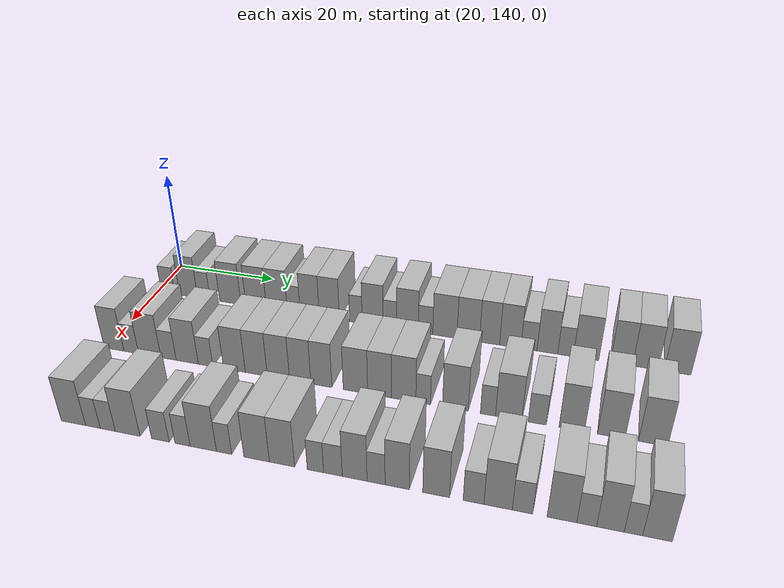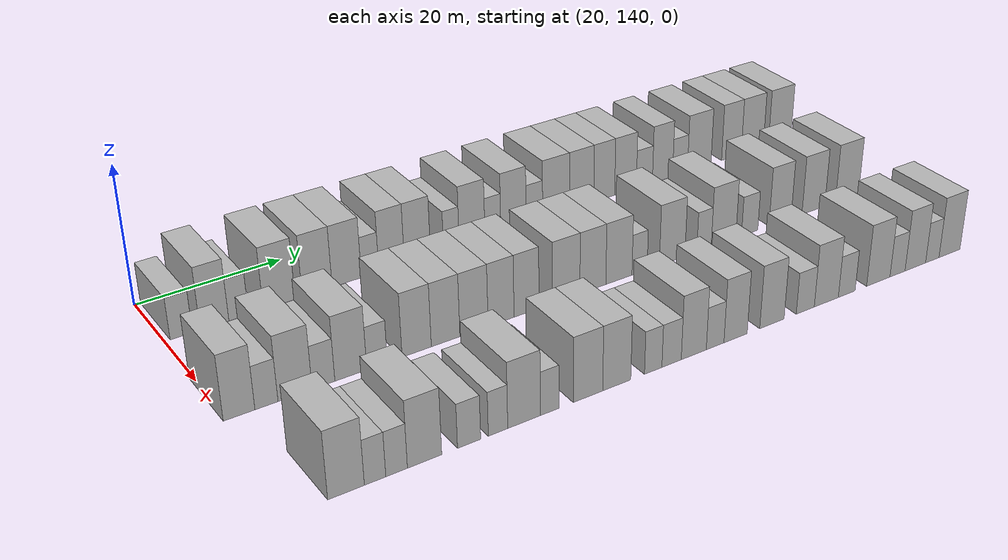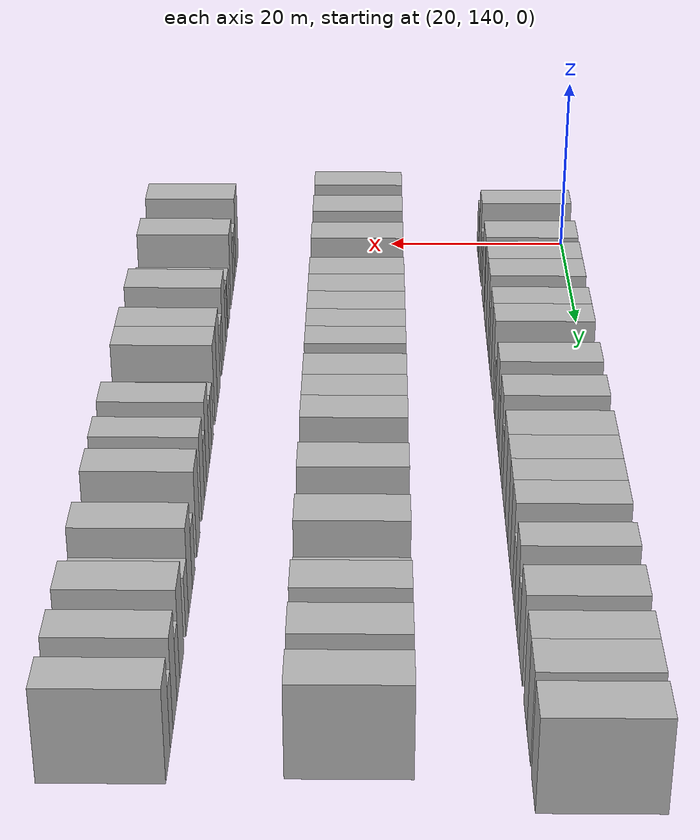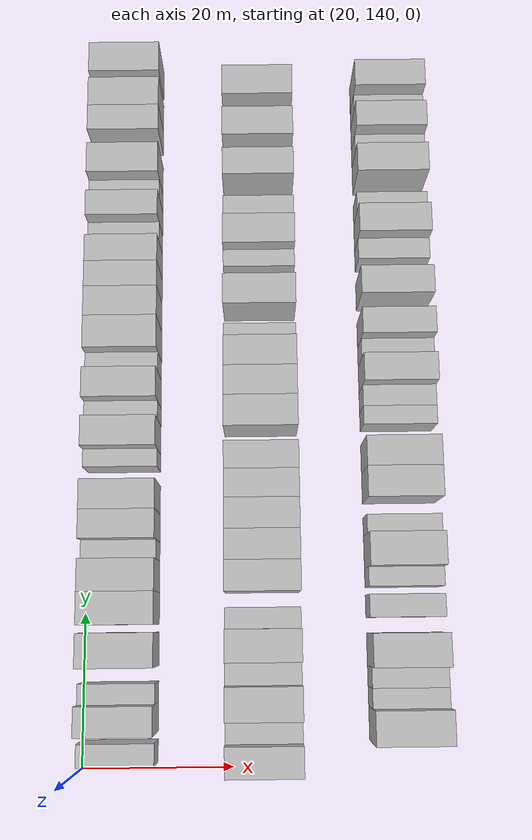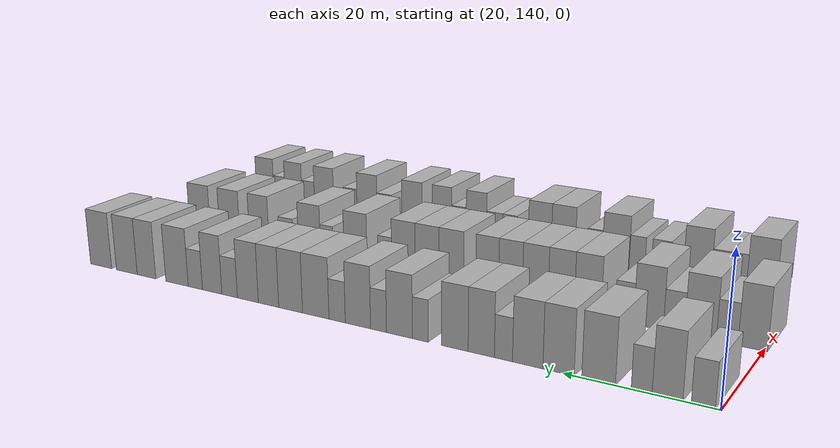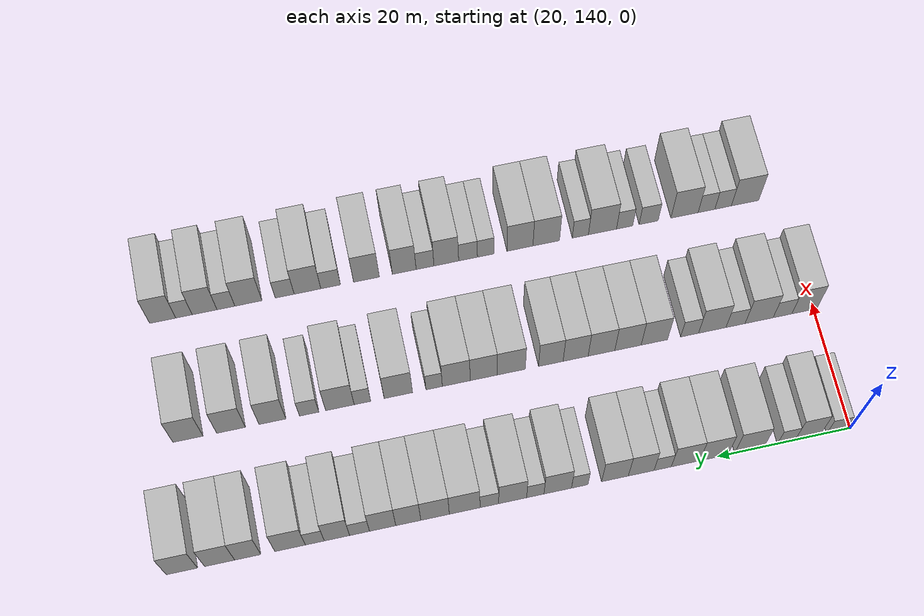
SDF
<sdf version="1.6">
 <world name="default">
  <model name="building_92">
   <static>1</static>
   <pose>25.0000 142.1798 0 0.000000 0.000000 0.000000</pose>
   <link name="link">
    <pose>0 0 3.00 0 0 0</pose>
    <collision name="collision"><geometry><box><size>10.0000 2.8975 6.0000</size></box></geometry></collision>
    <visual name="visual">
     <cast_shadows>0</cast_shadows>
     <geometry><box><size>10.0000 2.8975 6.0000</size></box></geometry>
     <material>
      <script>
       <uri>model://HANNAS_wall/materials/scripts</uri>
       <uri>model://HANNAS_wall/materials/textures</uri>
       <name>vrc/HANNAS_wall</name>
      </script>
     </material>
    </visual>
   </link>
  </model>
  <model name="building_93">
   <static>1</static>
   <pose>25.0000 146.5259 0 0.000000 0.000000 0.000000</pose>
   <link name="link">
    <pose>0 0 4.50 0 0 0</pose>
    <collision name="collision"><geometry><box><size>10.0000 3.7949 9.0000</size></box></geometry></collision>
    <visual name="visual">
     <cast_shadows>0</cast_shadows>
     <geometry><box><size>10.0000 3.7949 9.0000</size></box></geometry>
     <material>
      <script>
       <uri>model://HANNAS_wall/materials/scripts</uri>
       <uri>model://HANNAS_wall/materials/textures</uri>
       <name>vrc/HANNAS_wall</name>
      </script>
     </material>
    </visual>
   </link>
  </model>
  <model name="building_94">
   <static>1</static>
   <pose>25.0000 149.7406 0 0.000000 0.000000 0.000000</pose>
   <link name="link">
    <pose>0 0 3.00 0 0 0</pose>
    <collision name="collision"><geometry><box><size>10.0000 2.6344 6.0000</size></box></geometry></collision>
    <visual name="visual">
     <cast_shadows>0</cast_shadows>
     <geometry><box><size>10.0000 2.6344 6.0000</size></box></geometry>
     <material>
      <script>
       <uri>model://HANNAS_wall/materials/scripts</uri>
       <uri>model://HANNAS_wall/materials/textures</uri>
       <name>vrc/HANNAS_wall</name>
      </script>
     </material>
    </visual>
   </link>
  </model>
  <model name="building_95">
   <static>1</static>
   <pose>25.0000 155.2623 0 0.000000 0.000000 0.000000</pose>
   <link name="link">
    <pose>0 0 4.50 0 0 0</pose>
    <collision name="collision"><geometry><box><size>10.0000 4.4089 9.0000</size></box></geometry></collision>
    <visual name="visual">
     <cast_shadows>0</cast_shadows>
     <geometry><box><size>10.0000 4.4089 9.0000</size></box></geometry>
     <material>
      <script>
       <uri>model://HANNAS_wall/materials/scripts</uri>
       <uri>model://HANNAS_wall/materials/textures</uri>
       <name>vrc/HANNAS_wall</name>
      </script>
     </material>
    </visual>
   </link>
  </model>
  <model name="building_96">
   <static>1</static>
   <pose>25.0000 160.5820 0 0.000000 0.000000 0.000000</pose>
   <link name="link">
    <pose>0 0 4.50 0 0 0</pose>
    <collision name="collision"><geometry><box><size>10.0000 4.2304 9.0000</size></box></geometry></collision>
    <visual name="visual">
     <cast_shadows>0</cast_shadows>
     <geometry><box><size>10.0000 4.2304 9.0000</size></box></geometry>
     <material>
      <script>
       <uri>model://HANNAS_wall/materials/scripts</uri>
       <uri>model://HANNAS_wall/materials/textures</uri>
       <name>vrc/HANNAS_wall</name>
      </script>
     </material>
    </visual>
   </link>
  </model>
  <model name="building_97">
   <static>1</static>
   <pose>25.0000 164.8067 0 0.000000 0.000000 0.000000</pose>
   <link name="link">
    <pose>0 0 4.50 0 0 0</pose>
    <collision name="collision"><geometry><box><size>10.0000 4.2190 9.0000</size></box></geometry></collision>
    <visual name="visual">
     <cast_shadows>0</cast_shadows>
     <geometry><box><size>10.0000 4.2190 9.0000</size></box></geometry>
     <material>
      <script>
       <uri>model://HANNAS_wall/materials/scripts</uri>
       <uri>model://HANNAS_wall/materials/textures</uri>
       <name>vrc/HANNAS_wall</name>
      </script>
     </material>
    </visual>
   </link>
  </model>
  <model name="building_98">
   <static>1</static>
   <pose>25.0000 168.1983 0 0.000000 0.000000 0.000000</pose>
   <link name="link">
    <pose>0 0 3.00 0 0 0</pose>
    <collision name="collision"><geometry><box><size>10.0000 2.5643 6.0000</size></box></geometry></collision>
    <visual name="visual">
     <cast_shadows>0</cast_shadows>
     <geometry><box><size>10.0000 2.5643 6.0000</size></box></geometry>
     <material>
      <script>
       <uri>model://HANNAS_wall/materials/scripts</uri>
       <uri>model://HANNAS_wall/materials/textures</uri>
       <name>vrc/HANNAS_wall</name>
      </script>
     </material>
    </visual>
   </link>
  </model>
  <model name="building_99">
   <static>1</static>
   <pose>25.0000 171.3811 0 0.000000 0.000000 0.000000</pose>
   <link name="link">
    <pose>0 0 4.50 0 0 0</pose>
    <collision name="collision"><geometry><box><size>10.0000 3.8014 9.0000</size></box></geometry></collision>
    <visual name="visual">
     <cast_shadows>0</cast_shadows>
     <geometry><box><size>10.0000 3.8014 9.0000</size></box></geometry>
     <material>
      <script>
       <uri>model://HANNAS_wall/materials/scripts</uri>
       <uri>model://HANNAS_wall/materials/textures</uri>
       <name>vrc/HANNAS_wall</name>
      </script>
     </material>
    </visual>
   </link>
  </model>
  <model name="building_100">
   <static>1</static>
   <pose>25.0000 175.2586 0 0.000000 0.000000 0.000000</pose>
   <link name="link">
    <pose>0 0 4.50 0 0 0</pose>
    <collision name="collision"><geometry><box><size>10.0000 3.9536 9.0000</size></box></geometry></collision>
    <visual name="visual">
     <cast_shadows>0</cast_shadows>
     <geometry><box><size>10.0000 3.9536 9.0000</size></box></geometry>
     <material>
      <script>
       <uri>model://HANNAS_wall/materials/scripts</uri>
       <uri>model://HANNAS_wall/materials/textures</uri>
       <name>vrc/HANNAS_wall</name>
      </script>
     </material>
    </visual>
   </link>
  </model>
  <model name="building_101">
   <static>1</static>
   <pose>25.0000 180.4535 0 0.000000 0.000000 0.000000</pose>
   <link name="link">
    <pose>0 0 3.00 0 0 0</pose>
    <collision name="collision"><geometry><box><size>10.0000 2.4362 6.0000</size></box></geometry></collision>
    <visual name="visual">
     <cast_shadows>0</cast_shadows>
     <geometry><box><size>10.0000 2.4362 6.0000</size></box></geometry>
     <material>
      <script>
       <uri>model://HANNAS_wall/materials/scripts</uri>
       <uri>model://HANNAS_wall/materials/textures</uri>
       <name>vrc/HANNAS_wall</name>
      </script>
     </material>
    </visual>
   </link>
  </model>
  <model name="building_102">
   <static>1</static>
   <pose>25.0000 183.6947 0 0.000000 0.000000 0.000000</pose>
   <link name="link">
    <pose>0 0 4.50 0 0 0</pose>
    <collision name="collision"><geometry><box><size>10.0000 4.0461 9.0000</size></box></geometry></collision>
    <visual name="visual">
     <cast_shadows>0</cast_shadows>
     <geometry><box><size>10.0000 4.0461 9.0000</size></box></geometry>
     <material>
      <script>
       <uri>model://HANNAS_wall/materials/scripts</uri>
       <uri>model://HANNAS_wall/materials/textures</uri>
       <name>vrc/HANNAS_wall</name>
      </script>
     </material>
    </visual>
   </link>
  </model>
  <model name="building_103">
   <static>1</static>
   <pose>25.0000 186.9864 0 0.000000 0.000000 0.000000</pose>
   <link name="link">
    <pose>0 0 3.00 0 0 0</pose>
    <collision name="collision"><geometry><box><size>10.0000 2.5374 6.0000</size></box></geometry></collision>
    <visual name="visual">
     <cast_shadows>0</cast_shadows>
     <geometry><box><size>10.0000 2.5374 6.0000</size></box></geometry>
     <material>
      <script>
       <uri>model://HANNAS_wall/materials/scripts</uri>
       <uri>model://HANNAS_wall/materials/textures</uri>
       <name>vrc/HANNAS_wall</name>
      </script>
     </material>
    </visual>
   </link>
  </model>
  <model name="building_104">
   <static>1</static>
   <pose>25.0000 190.3065 0 0.000000 0.000000 0.000000</pose>
   <link name="link">
    <pose>0 0 4.50 0 0 0</pose>
    <collision name="collision"><geometry><box><size>10.0000 4.1027 9.0000</size></box></geometry></collision>
    <visual name="visual">
     <cast_shadows>0</cast_shadows>
     <geometry><box><size>10.0000 4.1027 9.0000</size></box></geometry>
     <material>
      <script>
       <uri>model://HANNAS_wall/materials/scripts</uri>
       <uri>model://HANNAS_wall/materials/textures</uri>
       <name>vrc/HANNAS_wall</name>
      </script>
     </material>
    </visual>
   </link>
  </model>
  <model name="building_105">
   <static>1</static>
   <pose>25.0000 193.7149 0 0.000000 0.000000 0.000000</pose>
   <link name="link">
    <pose>0 0 3.00 0 0 0</pose>
    <collision name="collision"><geometry><box><size>10.0000 2.7142 6.0000</size></box></geometry></collision>
    <visual name="visual">
     <cast_shadows>0</cast_shadows>
     <geometry><box><size>10.0000 2.7142 6.0000</size></box></geometry>
     <material>
      <script>
       <uri>model://HANNAS_wall/materials/scripts</uri>
       <uri>model://HANNAS_wall/materials/textures</uri>
       <name>vrc/HANNAS_wall</name>
      </script>
     </material>
    </visual>
   </link>
  </model>
  <model name="building_106">
   <static>1</static>
   <pose>25.0000 197.3073 0 0.000000 0.000000 0.000000</pose>
   <link name="link">
    <pose>0 0 4.50 0 0 0</pose>
    <collision name="collision"><geometry><box><size>10.0000 4.4706 9.0000</size></box></geometry></collision>
    <visual name="visual">
     <cast_shadows>0</cast_shadows>
     <geometry><box><size>10.0000 4.4706 9.0000</size></box></geometry>
     <material>
      <script>
       <uri>model://HANNAS_wall/materials/scripts</uri>
       <uri>model://HANNAS_wall/materials/textures</uri>
       <name>vrc/HANNAS_wall</name>
      </script>
     </material>
    </visual>
   </link>
  </model>
  <model name="building_107">
   <static>1</static>
   <pose>25.0000 201.6124 0 0.000000 0.000000 0.000000</pose>
   <link name="link">
    <pose>0 0 4.50 0 0 0</pose>
    <collision name="collision"><geometry><box><size>10.0000 4.1395 9.0000</size></box></geometry></collision>
    <visual name="visual">
     <cast_shadows>0</cast_shadows>
     <geometry><box><size>10.0000 4.1395 9.0000</size></box></geometry>
     <material>
      <script>
       <uri>model://HANNAS_wall/materials/scripts</uri>
       <uri>model://HANNAS_wall/materials/textures</uri>
       <name>vrc/HANNAS_wall</name>
      </script>
     </material>
    </visual>
   </link>
  </model>
  <model name="building_108">
   <static>1</static>
   <pose>25.0000 205.4943 0 0.000000 0.000000 0.000000</pose>
   <link name="link">
    <pose>0 0 4.50 0 0 0</pose>
    <collision name="collision"><geometry><box><size>10.0000 3.6243 9.0000</size></box></geometry></collision>
    <visual name="visual">
     <cast_shadows>0</cast_shadows>
     <geometry><box><size>10.0000 3.6243 9.0000</size></box></geometry>
     <material>
      <script>
       <uri>model://HANNAS_wall/materials/scripts</uri>
       <uri>model://HANNAS_wall/materials/textures</uri>
       <name>vrc/HANNAS_wall</name>
      </script>
     </material>
    </visual>
   </link>
  </model>
  <model name="building_109">
   <static>1</static>
   <pose>25.0000 209.2106 0 0.000000 0.000000 0.000000</pose>
   <link name="link">
    <pose>0 0 4.50 0 0 0</pose>
    <collision name="collision"><geometry><box><size>10.0000 3.8083 9.0000</size></box></geometry></collision>
    <visual name="visual">
     <cast_shadows>0</cast_shadows>
     <geometry><box><size>10.0000 3.8083 9.0000</size></box></geometry>
     <material>
      <script>
       <uri>model://HANNAS_wall/materials/scripts</uri>
       <uri>model://HANNAS_wall/materials/textures</uri>
       <name>vrc/HANNAS_wall</name>
      </script>
     </material>
    </visual>
   </link>
  </model>
  <model name="building_110">
   <static>1</static>
   <pose>25.0000 212.5458 0 0.000000 0.000000 0.000000</pose>
   <link name="link">
    <pose>0 0 3.00 0 0 0</pose>
    <collision name="collision"><geometry><box><size>10.0000 2.8622 6.0000</size></box></geometry></collision>
    <visual name="visual">
     <cast_shadows>0</cast_shadows>
     <geometry><box><size>10.0000 2.8622 6.0000</size></box></geometry>
     <material>
      <script>
       <uri>model://HANNAS_wall/materials/scripts</uri>
       <uri>model://HANNAS_wall/materials/textures</uri>
       <name>vrc/HANNAS_wall</name>
      </script>
     </material>
    </visual>
   </link>
  </model>
  <model name="building_111">
   <static>1</static>
   <pose>25.0000 215.8029 0 0.000000 0.000000 0.000000</pose>
   <link name="link">
    <pose>0 0 4.50 0 0 0</pose>
    <collision name="collision"><geometry><box><size>10.0000 3.6519 9.0000</size></box></geometry></collision>
    <visual name="visual">
     <cast_shadows>0</cast_shadows>
     <geometry><box><size>10.0000 3.6519 9.0000</size></box></geometry>
     <material>
      <script>
       <uri>model://HANNAS_wall/materials/scripts</uri>
       <uri>model://HANNAS_wall/materials/textures</uri>
       <name>vrc/HANNAS_wall</name>
      </script>
     </material>
    </visual>
   </link>
  </model>
  <model name="building_112">
   <static>1</static>
   <pose>25.0000 218.9921 0 0.000000 0.000000 0.000000</pose>
   <link name="link">
    <pose>0 0 3.00 0 0 0</pose>
    <collision name="collision"><geometry><box><size>10.0000 2.7266 6.0000</size></box></geometry></collision>
    <visual name="visual">
     <cast_shadows>0</cast_shadows>
     <geometry><box><size>10.0000 2.7266 6.0000</size></box></geometry>
     <material>
      <script>
       <uri>model://HANNAS_wall/materials/scripts</uri>
       <uri>model://HANNAS_wall/materials/textures</uri>
       <name>vrc/HANNAS_wall</name>
      </script>
     </material>
    </visual>
   </link>
  </model>
  <model name="building_113">
   <static>1</static>
   <pose>25.0000 222.5459 0 0.000000 0.000000 0.000000</pose>
   <link name="link">
    <pose>0 0 4.50 0 0 0</pose>
    <collision name="collision"><geometry><box><size>10.0000 4.3810 9.0000</size></box></geometry></collision>
    <visual name="visual">
     <cast_shadows>0</cast_shadows>
     <geometry><box><size>10.0000 4.3810 9.0000</size></box></geometry>
     <material>
      <script>
       <uri>model://HANNAS_wall/materials/scripts</uri>
       <uri>model://HANNAS_wall/materials/textures</uri>
       <name>vrc/HANNAS_wall</name>
      </script>
     </material>
    </visual>
   </link>
  </model>
  <model name="building_114">
   <static>1</static>
   <pose>25.0000 228.6052 0 0.000000 0.000000 0.000000</pose>
   <link name="link">
    <pose>0 0 4.50 0 0 0</pose>
    <collision name="collision"><geometry><box><size>10.0000 3.7375 9.0000</size></box></geometry></collision>
    <visual name="visual">
     <cast_shadows>0</cast_shadows>
     <geometry><box><size>10.0000 3.7375 9.0000</size></box></geometry>
     <material>
      <script>
       <uri>model://HANNAS_wall/materials/scripts</uri>
       <uri>model://HANNAS_wall/materials/textures</uri>
       <name>vrc/HANNAS_wall</name>
      </script>
     </material>
    </visual>
   </link>
  </model>
  <model name="building_115">
   <static>1</static>
   <pose>25.0000 232.6132 0 0.000000 0.000000 0.000000</pose>
   <link name="link">
    <pose>0 0 4.50 0 0 0</pose>
    <collision name="collision"><geometry><box><size>10.0000 4.2785 9.0000</size></box></geometry></collision>
    <visual name="visual">
     <cast_shadows>0</cast_shadows>
     <geometry><box><size>10.0000 4.2785 9.0000</size></box></geometry>
     <material>
      <script>
       <uri>model://HANNAS_wall/materials/scripts</uri>
       <uri>model://HANNAS_wall/materials/textures</uri>
       <name>vrc/HANNAS_wall</name>
      </script>
     </material>
    </visual>
   </link>
  </model>
  <model name="building_116">
   <static>1</static>
   <pose>25.0000 237.9758 0 0.000000 0.000000 0.000000</pose>
   <link name="link">
    <pose>0 0 4.50 0 0 0</pose>
    <collision name="collision"><geometry><box><size>10.0000 4.4467 9.0000</size></box></geometry></collision>
    <visual name="visual">
     <cast_shadows>0</cast_shadows>
     <geometry><box><size>10.0000 4.4467 9.0000</size></box></geometry>
     <material>
      <script>
       <uri>model://HANNAS_wall/materials/scripts</uri>
       <uri>model://HANNAS_wall/materials/textures</uri>
       <name>vrc/HANNAS_wall</name>
      </script>
     </material>
    </visual>
   </link>
  </model>
  <model name="building_215">
   <static>1</static>
   <pose>44.0000 141.4642 0 0.000000 0.000000 0.000000</pose>
   <link name="link">
    <pose>0 0 4.50 0 0 0</pose>
    <collision name="collision"><geometry><box><size>10.0000 3.8860 9.0000</size></box></geometry></collision>
    <visual name="visual">
     <cast_shadows>0</cast_shadows>
     <geometry><box><size>10.0000 3.8860 9.0000</size></box></geometry>
     <material>
      <script>
       <uri>model://HANNAS_wall/materials/scripts</uri>
       <uri>model://HANNAS_wall/materials/textures</uri>
       <name>vrc/HANNAS_wall</name>
      </script>
     </material>
    </visual>
   </link>
  </model>
  <model name="building_216">
   <static>1</static>
   <pose>44.0000 144.8445 0 0.000000 0.000000 0.000000</pose>
   <link name="link">
    <pose>0 0 3.00 0 0 0</pose>
    <collision name="collision"><geometry><box><size>10.0000 2.8747 6.0000</size></box></geometry></collision>
    <visual name="visual">
     <cast_shadows>0</cast_shadows>
     <geometry><box><size>10.0000 2.8747 6.0000</size></box></geometry>
     <material>
      <script>
       <uri>model://HANNAS_wall/materials/scripts</uri>
       <uri>model://HANNAS_wall/materials/textures</uri>
       <name>vrc/HANNAS_wall</name>
      </script>
     </material>
    </visual>
   </link>
  </model>
  <model name="building_217">
   <static>1</static>
   <pose>44.0000 148.4498 0 0.000000 0.000000 0.000000</pose>
   <link name="link">
    <pose>0 0 4.50 0 0 0</pose>
    <collision name="collision"><geometry><box><size>10.0000 4.3358 9.0000</size></box></geometry></collision>
    <visual name="visual">
     <cast_shadows>0</cast_shadows>
     <geometry><box><size>10.0000 4.3358 9.0000</size></box></geometry>
     <material>
      <script>
       <uri>model://HANNAS_wall/materials/scripts</uri>
       <uri>model://HANNAS_wall/materials/textures</uri>
       <name>vrc/HANNAS_wall</name>
      </script>
     </material>
    </visual>
   </link>
  </model>
  <model name="building_218">
   <static>1</static>
   <pose>44.0000 152.0885 0 0.000000 0.000000 0.000000</pose>
   <link name="link">
    <pose>0 0 3.00 0 0 0</pose>
    <collision name="collision"><geometry><box><size>10.0000 2.9416 6.0000</size></box></geometry></collision>
    <visual name="visual">
     <cast_shadows>0</cast_shadows>
     <geometry><box><size>10.0000 2.9416 6.0000</size></box></geometry>
     <material>
      <script>
       <uri>model://HANNAS_wall/materials/scripts</uri>
       <uri>model://HANNAS_wall/materials/textures</uri>
       <name>vrc/HANNAS_wall</name>
      </script>
     </material>
    </visual>
   </link>
  </model>
  <model name="building_219">
   <static>1</static>
   <pose>44.0000 155.6635 0 0.000000 0.000000 0.000000</pose>
   <link name="link">
    <pose>0 0 4.50 0 0 0</pose>
    <collision name="collision"><geometry><box><size>10.0000 4.2083 9.0000</size></box></geometry></collision>
    <visual name="visual">
     <cast_shadows>0</cast_shadows>
     <geometry><box><size>10.0000 4.2083 9.0000</size></box></geometry>
     <material>
      <script>
       <uri>model://HANNAS_wall/materials/scripts</uri>
       <uri>model://HANNAS_wall/materials/textures</uri>
       <name>vrc/HANNAS_wall</name>
      </script>
     </material>
    </visual>
   </link>
  </model>
  <model name="building_220">
   <static>1</static>
   <pose>44.0000 159.1427 0 0.000000 0.000000 0.000000</pose>
   <link name="link">
    <pose>0 0 3.00 0 0 0</pose>
    <collision name="collision"><geometry><box><size>10.0000 2.7502 6.0000</size></box></geometry></collision>
    <visual name="visual">
     <cast_shadows>0</cast_shadows>
     <geometry><box><size>10.0000 2.7502 6.0000</size></box></geometry>
     <material>
      <script>
       <uri>model://HANNAS_wall/materials/scripts</uri>
       <uri>model://HANNAS_wall/materials/textures</uri>
       <name>vrc/HANNAS_wall</name>
      </script>
     </material>
    </visual>
   </link>
  </model>
  <model name="building_221">
   <static>1</static>
   <pose>44.0000 164.5348 0 0.000000 0.000000 0.000000</pose>
   <link name="link">
    <pose>0 0 4.50 0 0 0</pose>
    <collision name="collision"><geometry><box><size>10.0000 4.0340 9.0000</size></box></geometry></collision>
    <visual name="visual">
     <cast_shadows>0</cast_shadows>
     <geometry><box><size>10.0000 4.0340 9.0000</size></box></geometry>
     <material>
      <script>
       <uri>model://HANNAS_wall/materials/scripts</uri>
       <uri>model://HANNAS_wall/materials/textures</uri>
       <name>vrc/HANNAS_wall</name>
      </script>
     </material>
    </visual>
   </link>
  </model>
  <model name="building_222">
   <static>1</static>
   <pose>44.0000 168.5624 0 0.000000 0.000000 0.000000</pose>
   <link name="link">
    <pose>0 0 4.50 0 0 0</pose>
    <collision name="collision"><geometry><box><size>10.0000 4.0212 9.0000</size></box></geometry></collision>
    <visual name="visual">
     <cast_shadows>0</cast_shadows>
     <geometry><box><size>10.0000 4.0212 9.0000</size></box></geometry>
     <material>
      <script>
       <uri>model://HANNAS_wall/materials/scripts</uri>
       <uri>model://HANNAS_wall/materials/textures</uri>
       <name>vrc/HANNAS_wall</name>
      </script>
     </material>
    </visual>
   </link>
  </model>
  <model name="building_223">
   <static>1</static>
   <pose>44.0000 172.5974 0 0.000000 0.000000 0.000000</pose>
   <link name="link">
    <pose>0 0 4.50 0 0 0</pose>
    <collision name="collision"><geometry><box><size>10.0000 4.0487 9.0000</size></box></geometry></collision>
    <visual name="visual">
     <cast_shadows>0</cast_shadows>
     <geometry><box><size>10.0000 4.0487 9.0000</size></box></geometry>
     <material>
      <script>
       <uri>model://HANNAS_wall/materials/scripts</uri>
       <uri>model://HANNAS_wall/materials/textures</uri>
       <name>vrc/HANNAS_wall</name>
      </script>
     </material>
    </visual>
   </link>
  </model>
  <model name="building_224">
   <static>1</static>
   <pose>44.0000 176.5198 0 0.000000 0.000000 0.000000</pose>
   <link name="link">
    <pose>0 0 4.50 0 0 0</pose>
    <collision name="collision"><geometry><box><size>10.0000 3.7961 9.0000</size></box></geometry></collision>
    <visual name="visual">
     <cast_shadows>0</cast_shadows>
     <geometry><box><size>10.0000 3.7961 9.0000</size></box></geometry>
     <material>
      <script>
       <uri>model://HANNAS_wall/materials/scripts</uri>
       <uri>model://HANNAS_wall/materials/textures</uri>
       <name>vrc/HANNAS_wall</name>
      </script>
     </material>
    </visual>
   </link>
  </model>
  <model name="building_225">
   <static>1</static>
   <pose>44.0000 180.2763 0 0.000000 0.000000 0.000000</pose>
   <link name="link">
    <pose>0 0 4.50 0 0 0</pose>
    <collision name="collision"><geometry><box><size>10.0000 3.7170 9.0000</size></box></geometry></collision>
    <visual name="visual">
     <cast_shadows>0</cast_shadows>
     <geometry><box><size>10.0000 3.7170 9.0000</size></box></geometry>
     <material>
      <script>
       <uri>model://HANNAS_wall/materials/scripts</uri>
       <uri>model://HANNAS_wall/materials/textures</uri>
       <name>vrc/HANNAS_wall</name>
      </script>
     </material>
    </visual>
   </link>
  </model>
  <model name="building_226">
   <static>1</static>
   <pose>44.0000 186.2483 0 0.000000 0.000000 0.000000</pose>
   <link name="link">
    <pose>0 0 4.50 0 0 0</pose>
    <collision name="collision"><geometry><box><size>10.0000 4.2270 9.0000</size></box></geometry></collision>
    <visual name="visual">
     <cast_shadows>0</cast_shadows>
     <geometry><box><size>10.0000 4.2270 9.0000</size></box></geometry>
     <material>
      <script>
       <uri>model://HANNAS_wall/materials/scripts</uri>
       <uri>model://HANNAS_wall/materials/textures</uri>
       <name>vrc/HANNAS_wall</name>
      </script>
     </material>
    </visual>
   </link>
  </model>
  <model name="building_227">
   <static>1</static>
   <pose>44.0000 190.3904 0 0.000000 0.000000 0.000000</pose>
   <link name="link">
    <pose>0 0 4.50 0 0 0</pose>
    <collision name="collision"><geometry><box><size>10.0000 4.0571 9.0000</size></box></geometry></collision>
    <visual name="visual">
     <cast_shadows>0</cast_shadows>
     <geometry><box><size>10.0000 4.0571 9.0000</size></box></geometry>
     <material>
      <script>
       <uri>model://HANNAS_wall/materials/scripts</uri>
       <uri>model://HANNAS_wall/materials/textures</uri>
       <name>vrc/HANNAS_wall</name>
      </script>
     </material>
    </visual>
   </link>
  </model>
  <model name="building_228">
   <static>1</static>
   <pose>44.0000 194.5025 0 0.000000 0.000000 0.000000</pose>
   <link name="link">
    <pose>0 0 4.50 0 0 0</pose>
    <collision name="collision"><geometry><box><size>10.0000 4.1670 9.0000</size></box></geometry></collision>
    <visual name="visual">
     <cast_shadows>0</cast_shadows>
     <geometry><box><size>10.0000 4.1670 9.0000</size></box></geometry>
     <material>
      <script>
       <uri>model://HANNAS_wall/materials/scripts</uri>
       <uri>model://HANNAS_wall/materials/textures</uri>
       <name>vrc/HANNAS_wall</name>
      </script>
     </material>
    </visual>
   </link>
  </model>
  <model name="building_229">
   <static>1</static>
   <pose>44.0000 197.8110 0 0.000000 0.000000 0.000000</pose>
   <link name="link">
    <pose>0 0 3.00 0 0 0</pose>
    <collision name="collision"><geometry><box><size>10.0000 2.4500 6.0000</size></box></geometry></collision>
    <visual name="visual">
     <cast_shadows>0</cast_shadows>
     <geometry><box><size>10.0000 2.4500 6.0000</size></box></geometry>
     <material>
      <script>
       <uri>model://HANNAS_wall/materials/scripts</uri>
       <uri>model://HANNAS_wall/materials/textures</uri>
       <name>vrc/HANNAS_wall</name>
      </script>
     </material>
    </visual>
   </link>
  </model>
  <model name="building_230">
   <static>1</static>
   <pose>44.0000 203.1567 0 0.000000 0.000000 0.000000</pose>
   <link name="link">
    <pose>0 0 4.50 0 0 0</pose>
    <collision name="collision"><geometry><box><size>10.0000 4.2415 9.0000</size></box></geometry></collision>
    <visual name="visual">
     <cast_shadows>0</cast_shadows>
     <geometry><box><size>10.0000 4.2415 9.0000</size></box></geometry>
     <material>
      <script>
       <uri>model://HANNAS_wall/materials/scripts</uri>
       <uri>model://HANNAS_wall/materials/textures</uri>
       <name>vrc/HANNAS_wall</name>
      </script>
     </material>
    </visual>
   </link>
  </model>
  <model name="building_231">
   <static>1</static>
   <pose>44.0000 208.5021 0 0.000000 0.000000 0.000000</pose>
   <link name="link">
    <pose>0 0 3.00 0 0 0</pose>
    <collision name="collision"><geometry><box><size>10.0000 2.4494 6.0000</size></box></geometry></collision>
    <visual name="visual">
     <cast_shadows>0</cast_shadows>
     <geometry><box><size>10.0000 2.4494 6.0000</size></box></geometry>
     <material>
      <script>
       <uri>model://HANNAS_wall/materials/scripts</uri>
       <uri>model://HANNAS_wall/materials/textures</uri>
       <name>vrc/HANNAS_wall</name>
      </script>
     </material>
    </visual>
   </link>
  </model>
  <model name="building_232">
   <static>1</static>
   <pose>44.0000 211.8461 0 0.000000 0.000000 0.000000</pose>
   <link name="link">
    <pose>0 0 4.50 0 0 0</pose>
    <collision name="collision"><geometry><box><size>10.0000 4.2387 9.0000</size></box></geometry></collision>
    <visual name="visual">
     <cast_shadows>0</cast_shadows>
     <geometry><box><size>10.0000 4.2387 9.0000</size></box></geometry>
     <material>
      <script>
       <uri>model://HANNAS_wall/materials/scripts</uri>
       <uri>model://HANNAS_wall/materials/textures</uri>
       <name>vrc/HANNAS_wall</name>
      </script>
     </material>
    </visual>
   </link>
  </model>
  <model name="building_233">
   <static>1</static>
   <pose>44.0000 216.3993 0 0.000000 0.000000 0.000000</pose>
   <link name="link">
    <pose>0 0 3.00 0 0 0</pose>
    <collision name="collision"><geometry><box><size>10.0000 2.8677 6.0000</size></box></geometry></collision>
    <visual name="visual">
     <cast_shadows>0</cast_shadows>
     <geometry><box><size>10.0000 2.8677 6.0000</size></box></geometry>
     <material>
      <script>
       <uri>model://HANNAS_wall/materials/scripts</uri>
       <uri>model://HANNAS_wall/materials/textures</uri>
       <name>vrc/HANNAS_wall</name>
      </script>
     </material>
    </visual>
   </link>
  </model>
  <model name="building_234">
   <static>1</static>
   <pose>44.0000 221.8175 0 0.000000 0.000000 0.000000</pose>
   <link name="link">
    <pose>0 0 4.50 0 0 0</pose>
    <collision name="collision"><geometry><box><size>10.0000 3.9687 9.0000</size></box></geometry></collision>
    <visual name="visual">
     <cast_shadows>0</cast_shadows>
     <geometry><box><size>10.0000 3.9687 9.0000</size></box></geometry>
     <material>
      <script>
       <uri>model://HANNAS_wall/materials/scripts</uri>
       <uri>model://HANNAS_wall/materials/textures</uri>
       <name>vrc/HANNAS_wall</name>
      </script>
     </material>
    </visual>
   </link>
  </model>
  <model name="building_235">
   <static>1</static>
   <pose>44.0000 227.9108 0 0.000000 0.000000 0.000000</pose>
   <link name="link">
    <pose>0 0 4.50 0 0 0</pose>
    <collision name="collision"><geometry><box><size>10.0000 4.2178 9.0000</size></box></geometry></collision>
    <visual name="visual">
     <cast_shadows>0</cast_shadows>
     <geometry><box><size>10.0000 4.2178 9.0000</size></box></geometry>
     <material>
      <script>
       <uri>model://HANNAS_wall/materials/scripts</uri>
       <uri>model://HANNAS_wall/materials/textures</uri>
       <name>vrc/HANNAS_wall</name>
      </script>
     </material>
    </visual>
   </link>
  </model>
  <model name="building_236">
   <static>1</static>
   <pose>44.0000 234.2228 0 0.000000 0.000000 0.000000</pose>
   <link name="link">
    <pose>0 0 4.50 0 0 0</pose>
    <collision name="collision"><geometry><box><size>10.0000 4.4062 9.0000</size></box></geometry></collision>
    <visual name="visual">
     <cast_shadows>0</cast_shadows>
     <geometry><box><size>10.0000 4.4062 9.0000</size></box></geometry>
     <material>
      <script>
       <uri>model://HANNAS_wall/materials/scripts</uri>
       <uri>model://HANNAS_wall/materials/textures</uri>
       <name>vrc/HANNAS_wall</name>
      </script>
     </material>
    </visual>
   </link>
  </model>
  <model name="building_334">
   <static>1</static>
   <pose>63.0000 145.3531 0 0.000000 0.000000 0.000000</pose>
   <link name="link">
    <pose>0 0 4.50 0 0 0</pose>
    <collision name="collision"><geometry><box><size>10.0000 4.3512 9.0000</size></box></geometry></collision>
    <visual name="visual">
     <cast_shadows>0</cast_shadows>
     <geometry><box><size>10.0000 4.3512 9.0000</size></box></geometry>
     <material>
      <script>
       <uri>model://HANNAS_wall/materials/scripts</uri>
       <uri>model://HANNAS_wall/materials/textures</uri>
       <name>vrc/HANNAS_wall</name>
      </script>
     </material>
    </visual>
   </link>
  </model>
  <model name="building_335">
   <static>1</static>
   <pose>63.0000 148.8240 0 0.000000 0.000000 0.000000</pose>
   <link name="link">
    <pose>0 0 3.00 0 0 0</pose>
    <collision name="collision"><geometry><box><size>10.0000 2.5905 6.0000</size></box></geometry></collision>
    <visual name="visual">
     <cast_shadows>0</cast_shadows>
     <geometry><box><size>10.0000 2.5905 6.0000</size></box></geometry>
     <material>
      <script>
       <uri>model://HANNAS_wall/materials/scripts</uri>
       <uri>model://HANNAS_wall/materials/textures</uri>
       <name>vrc/HANNAS_wall</name>
      </script>
     </material>
    </visual>
   </link>
  </model>
  <model name="building_336">
   <static>1</static>
   <pose>63.0000 151.4440 0 0.000000 0.000000 0.000000</pose>
   <link name="link">
    <pose>0 0 3.00 0 0 0</pose>
    <collision name="collision"><geometry><box><size>10.0000 2.6495 6.0000</size></box></geometry></collision>
    <visual name="visual">
     <cast_shadows>0</cast_shadows>
     <geometry><box><size>10.0000 2.6495 6.0000</size></box></geometry>
     <material>
      <script>
       <uri>model://HANNAS_wall/materials/scripts</uri>
       <uri>model://HANNAS_wall/materials/textures</uri>
       <name>vrc/HANNAS_wall</name>
      </script>
     </material>
    </visual>
   </link>
  </model>
  <model name="building_337">
   <static>1</static>
   <pose>63.0000 154.9140 0 0.000000 0.000000 0.000000</pose>
   <link name="link">
    <pose>0 0 4.50 0 0 0</pose>
    <collision name="collision"><geometry><box><size>10.0000 4.2905 9.0000</size></box></geometry></collision>
    <visual name="visual">
     <cast_shadows>0</cast_shadows>
     <geometry><box><size>10.0000 4.2905 9.0000</size></box></geometry>
     <material>
      <script>
       <uri>model://HANNAS_wall/materials/scripts</uri>
       <uri>model://HANNAS_wall/materials/textures</uri>
       <name>vrc/HANNAS_wall</name>
      </script>
     </material>
    </visual>
   </link>
  </model>
  <model name="building_338">
   <static>1</static>
   <pose>63.0000 160.5525 0 0.000000 0.000000 0.000000</pose>
   <link name="link">
    <pose>0 0 3.00 0 0 0</pose>
    <collision name="collision"><geometry><box><size>10.0000 2.9866 6.0000</size></box></geometry></collision>
    <visual name="visual">
     <cast_shadows>0</cast_shadows>
     <geometry><box><size>10.0000 2.9866 6.0000</size></box></geometry>
     <material>
      <script>
       <uri>model://HANNAS_wall/materials/scripts</uri>
       <uri>model://HANNAS_wall/materials/textures</uri>
       <name>vrc/HANNAS_wall</name>
      </script>
     </material>
    </visual>
   </link>
  </model>
  <model name="building_339">
   <static>1</static>
   <pose>63.0000 164.3221 0 0.000000 0.000000 0.000000</pose>
   <link name="link">
    <pose>0 0 3.00 0 0 0</pose>
    <collision name="collision"><geometry><box><size>10.0000 2.5525 6.0000</size></box></geometry></collision>
    <visual name="visual">
     <cast_shadows>0</cast_shadows>
     <geometry><box><size>10.0000 2.5525 6.0000</size></box></geometry>
     <material>
      <script>
       <uri>model://HANNAS_wall/materials/scripts</uri>
       <uri>model://HANNAS_wall/materials/textures</uri>
       <name>vrc/HANNAS_wall</name>
      </script>
     </material>
    </visual>
   </link>
  </model>
  <model name="building_340">
   <static>1</static>
   <pose>63.0000 167.7921 0 0.000000 0.000000 0.000000</pose>
   <link name="link">
    <pose>0 0 4.50 0 0 0</pose>
    <collision name="collision"><geometry><box><size>10.0000 4.3876 9.0000</size></box></geometry></collision>
    <visual name="visual">
     <cast_shadows>0</cast_shadows>
     <geometry><box><size>10.0000 4.3876 9.0000</size></box></geometry>
     <material>
      <script>
       <uri>model://HANNAS_wall/materials/scripts</uri>
       <uri>model://HANNAS_wall/materials/textures</uri>
       <name>vrc/HANNAS_wall</name>
      </script>
     </material>
    </visual>
   </link>
  </model>
  <model name="building_341">
   <static>1</static>
   <pose>63.0000 171.2418 0 0.000000 0.000000 0.000000</pose>
   <link name="link">
    <pose>0 0 3.00 0 0 0</pose>
    <collision name="collision"><geometry><box><size>10.0000 2.5117 6.0000</size></box></geometry></collision>
    <visual name="visual">
     <cast_shadows>0</cast_shadows>
     <geometry><box><size>10.0000 2.5117 6.0000</size></box></geometry>
     <material>
      <script>
       <uri>model://HANNAS_wall/materials/scripts</uri>
       <uri>model://HANNAS_wall/materials/textures</uri>
       <name>vrc/HANNAS_wall</name>
      </script>
     </material>
    </visual>
   </link>
  </model>
  <model name="building_342">
   <static>1</static>
   <pose>63.0000 176.5577 0 0.000000 0.000000 0.000000</pose>
   <link name="link">
    <pose>0 0 4.50 0 0 0</pose>
    <collision name="collision"><geometry><box><size>10.0000 4.1202 9.0000</size></box></geometry></collision>
    <visual name="visual">
     <cast_shadows>0</cast_shadows>
     <geometry><box><size>10.0000 4.1202 9.0000</size></box></geometry>
     <material>
      <script>
       <uri>model://HANNAS_wall/materials/scripts</uri>
       <uri>model://HANNAS_wall/materials/textures</uri>
       <name>vrc/HANNAS_wall</name>
      </script>
     </material>
    </visual>
   </link>
  </model>
  <model name="building_343">
   <static>1</static>
   <pose>63.0000 180.6343 0 0.000000 0.000000 0.000000</pose>
   <link name="link">
    <pose>0 0 4.50 0 0 0</pose>
    <collision name="collision"><geometry><box><size>10.0000 4.0329 9.0000</size></box></geometry></collision>
    <visual name="visual">
     <cast_shadows>0</cast_shadows>
     <geometry><box><size>10.0000 4.0329 9.0000</size></box></geometry>
     <material>
      <script>
       <uri>model://HANNAS_wall/materials/scripts</uri>
       <uri>model://HANNAS_wall/materials/textures</uri>
       <name>vrc/HANNAS_wall</name>
      </script>
     </material>
    </visual>
   </link>
  </model>
  <model name="building_344">
   <static>1</static>
   <pose>63.0000 185.9352 0 0.000000 0.000000 0.000000</pose>
   <link name="link">
    <pose>0 0 3.00 0 0 0</pose>
    <collision name="collision"><geometry><box><size>10.0000 2.5689 6.0000</size></box></geometry></collision>
    <visual name="visual">
     <cast_shadows>0</cast_shadows>
     <geometry><box><size>10.0000 2.5689 6.0000</size></box></geometry>
     <material>
      <script>
       <uri>model://HANNAS_wall/materials/scripts</uri>
       <uri>model://HANNAS_wall/materials/textures</uri>
       <name>vrc/HANNAS_wall</name>
      </script>
     </material>
    </visual>
   </link>
  </model>
  <model name="building_345">
   <static>1</static>
   <pose>63.0000 188.6648 0 0.000000 0.000000 0.000000</pose>
   <link name="link">
    <pose>0 0 3.00 0 0 0</pose>
    <collision name="collision"><geometry><box><size>10.0000 2.8902 6.0000</size></box></geometry></collision>
    <visual name="visual">
     <cast_shadows>0</cast_shadows>
     <geometry><box><size>10.0000 2.8902 6.0000</size></box></geometry>
     <material>
      <script>
       <uri>model://HANNAS_wall/materials/scripts</uri>
       <uri>model://HANNAS_wall/materials/textures</uri>
       <name>vrc/HANNAS_wall</name>
      </script>
     </material>
    </visual>
   </link>
  </model>
  <model name="building_346">
   <static>1</static>
   <pose>63.0000 192.0118 0 0.000000 0.000000 0.000000</pose>
   <link name="link">
    <pose>0 0 4.50 0 0 0</pose>
    <collision name="collision"><geometry><box><size>10.0000 3.8038 9.0000</size></box></geometry></collision>
    <visual name="visual">
     <cast_shadows>0</cast_shadows>
     <geometry><box><size>10.0000 3.8038 9.0000</size></box></geometry>
     <material>
      <script>
       <uri>model://HANNAS_wall/materials/scripts</uri>
       <uri>model://HANNAS_wall/materials/textures</uri>
       <name>vrc/HANNAS_wall</name>
      </script>
     </material>
    </visual>
   </link>
  </model>
  <model name="building_347">
   <static>1</static>
   <pose>63.0000 195.2799 0 0.000000 0.000000 0.000000</pose>
   <link name="link">
    <pose>0 0 3.00 0 0 0</pose>
    <collision name="collision"><geometry><box><size>10.0000 2.7323 6.0000</size></box></geometry></collision>
    <visual name="visual">
     <cast_shadows>0</cast_shadows>
     <geometry><box><size>10.0000 2.7323 6.0000</size></box></geometry>
     <material>
      <script>
       <uri>model://HANNAS_wall/materials/scripts</uri>
       <uri>model://HANNAS_wall/materials/textures</uri>
       <name>vrc/HANNAS_wall</name>
      </script>
     </material>
    </visual>
   </link>
  </model>
  <model name="building_348">
   <static>1</static>
   <pose>63.0000 198.4704 0 0.000000 0.000000 0.000000</pose>
   <link name="link">
    <pose>0 0 4.50 0 0 0</pose>
    <collision name="collision"><geometry><box><size>10.0000 3.6486 9.0000</size></box></geometry></collision>
    <visual name="visual">
     <cast_shadows>0</cast_shadows>
     <geometry><box><size>10.0000 3.6486 9.0000</size></box></geometry>
     <material>
      <script>
       <uri>model://HANNAS_wall/materials/scripts</uri>
       <uri>model://HANNAS_wall/materials/textures</uri>
       <name>vrc/HANNAS_wall</name>
      </script>
     </material>
    </visual>
   </link>
  </model>
  <model name="building_349">
   <static>1</static>
   <pose>63.0000 204.2630 0 0.000000 0.000000 0.000000</pose>
   <link name="link">
    <pose>0 0 4.50 0 0 0</pose>
    <collision name="collision"><geometry><box><size>10.0000 3.9366 9.0000</size></box></geometry></collision>
    <visual name="visual">
     <cast_shadows>0</cast_shadows>
     <geometry><box><size>10.0000 3.9366 9.0000</size></box></geometry>
     <material>
      <script>
       <uri>model://HANNAS_wall/materials/scripts</uri>
       <uri>model://HANNAS_wall/materials/textures</uri>
       <name>vrc/HANNAS_wall</name>
      </script>
     </material>
    </visual>
   </link>
  </model>
  <model name="building_350">
   <static>1</static>
   <pose>63.0000 209.7268 0 0.000000 0.000000 0.000000</pose>
   <link name="link">
    <pose>0 0 3.00 0 0 0</pose>
    <collision name="collision"><geometry><box><size>10.0000 2.9909 6.0000</size></box></geometry></collision>
    <visual name="visual">
     <cast_shadows>0</cast_shadows>
     <geometry><box><size>10.0000 2.9909 6.0000</size></box></geometry>
     <material>
      <script>
       <uri>model://HANNAS_wall/materials/scripts</uri>
       <uri>model://HANNAS_wall/materials/textures</uri>
       <name>vrc/HANNAS_wall</name>
      </script>
     </material>
    </visual>
   </link>
  </model>
  <model name="building_351">
   <static>1</static>
   <pose>63.0000 213.2492 0 0.000000 0.000000 0.000000</pose>
   <link name="link">
    <pose>0 0 4.50 0 0 0</pose>
    <collision name="collision"><geometry><box><size>10.0000 4.0540 9.0000</size></box></geometry></collision>
    <visual name="visual">
     <cast_shadows>0</cast_shadows>
     <geometry><box><size>10.0000 4.0540 9.0000</size></box></geometry>
     <material>
      <script>
       <uri>model://HANNAS_wall/materials/scripts</uri>
       <uri>model://HANNAS_wall/materials/textures</uri>
       <name>vrc/HANNAS_wall</name>
      </script>
     </material>
    </visual>
   </link>
  </model>
  <model name="building_352">
   <static>1</static>
   <pose>63.0000 216.7183 0 0.000000 0.000000 0.000000</pose>
   <link name="link">
    <pose>0 0 3.00 0 0 0</pose>
    <collision name="collision"><geometry><box><size>10.0000 2.8842 6.0000</size></box></geometry></collision>
    <visual name="visual">
     <cast_shadows>0</cast_shadows>
     <geometry><box><size>10.0000 2.8842 6.0000</size></box></geometry>
     <material>
      <script>
       <uri>model://HANNAS_wall/materials/scripts</uri>
       <uri>model://HANNAS_wall/materials/textures</uri>
       <name>vrc/HANNAS_wall</name>
      </script>
     </material>
    </visual>
   </link>
  </model>
  <model name="building_353">
   <static>1</static>
   <pose>63.0000 222.2130 0 0.000000 0.000000 0.000000</pose>
   <link name="link">
    <pose>0 0 4.50 0 0 0</pose>
    <collision name="collision"><geometry><box><size>10.0000 4.1053 9.0000</size></box></geometry></collision>
    <visual name="visual">
     <cast_shadows>0</cast_shadows>
     <geometry><box><size>10.0000 4.1053 9.0000</size></box></geometry>
     <material>
      <script>
       <uri>model://HANNAS_wall/materials/scripts</uri>
       <uri>model://HANNAS_wall/materials/textures</uri>
       <name>vrc/HANNAS_wall</name>
      </script>
     </material>
    </visual>
   </link>
  </model>
  <model name="building_354">
   <static>1</static>
   <pose>63.0000 225.6142 0 0.000000 0.000000 0.000000</pose>
   <link name="link">
    <pose>0 0 3.00 0 0 0</pose>
    <collision name="collision"><geometry><box><size>10.0000 2.6971 6.0000</size></box></geometry></collision>
    <visual name="visual">
     <cast_shadows>0</cast_shadows>
     <geometry><box><size>10.0000 2.6971 6.0000</size></box></geometry>
     <material>
      <script>
       <uri>model://HANNAS_wall/materials/scripts</uri>
       <uri>model://HANNAS_wall/materials/textures</uri>
       <name>vrc/HANNAS_wall</name>
      </script>
     </material>
    </visual>
   </link>
  </model>
  <model name="building_355">
   <static>1</static>
   <pose>63.0000 228.8290 0 0.000000 0.000000 0.000000</pose>
   <link name="link">
    <pose>0 0 4.50 0 0 0</pose>
    <collision name="collision"><geometry><box><size>10.0000 3.7325 9.0000</size></box></geometry></collision>
    <visual name="visual">
     <cast_shadows>0</cast_shadows>
     <geometry><box><size>10.0000 3.7325 9.0000</size></box></geometry>
     <material>
      <script>
       <uri>model://HANNAS_wall/materials/scripts</uri>
       <uri>model://HANNAS_wall/materials/textures</uri>
       <name>vrc/HANNAS_wall</name>
      </script>
     </material>
    </visual>
   </link>
  </model>
  <model name="building_356">
   <static>1</static>
   <pose>63.0000 231.9255 0 0.000000 0.000000 0.000000</pose>
   <link name="link">
    <pose>0 0 3.00 0 0 0</pose>
    <collision name="collision"><geometry><box><size>10.0000 2.4605 6.0000</size></box></geometry></collision>
    <visual name="visual">
     <cast_shadows>0</cast_shadows>
     <geometry><box><size>10.0000 2.4605 6.0000</size></box></geometry>
     <material>
      <script>
       <uri>model://HANNAS_wall/materials/scripts</uri>
       <uri>model://HANNAS_wall/materials/textures</uri>
       <name>vrc/HANNAS_wall</name>
      </script>
     </material>
    </visual>
   </link>
  </model>
  <model name="building_357">
   <static>1</static>
   <pose>63.0000 235.1169 0 0.000000 0.000000 0.000000</pose>
   <link name="link">
    <pose>0 0 4.50 0 0 0</pose>
    <collision name="collision"><geometry><box><size>10.0000 3.9223 9.0000</size></box></geometry></collision>
    <visual name="visual">
     <cast_shadows>0</cast_shadows>
     <geometry><box><size>10.0000 3.9223 9.0000</size></box></geometry>
     <material>
      <script>
       <uri>model://HANNAS_wall/materials/scripts</uri>
       <uri>model://HANNAS_wall/materials/textures</uri>
       <name>vrc/HANNAS_wall</name>
      </script>
     </material>
    </visual>
   </link>
  </model>
 </world>
</sdf>
